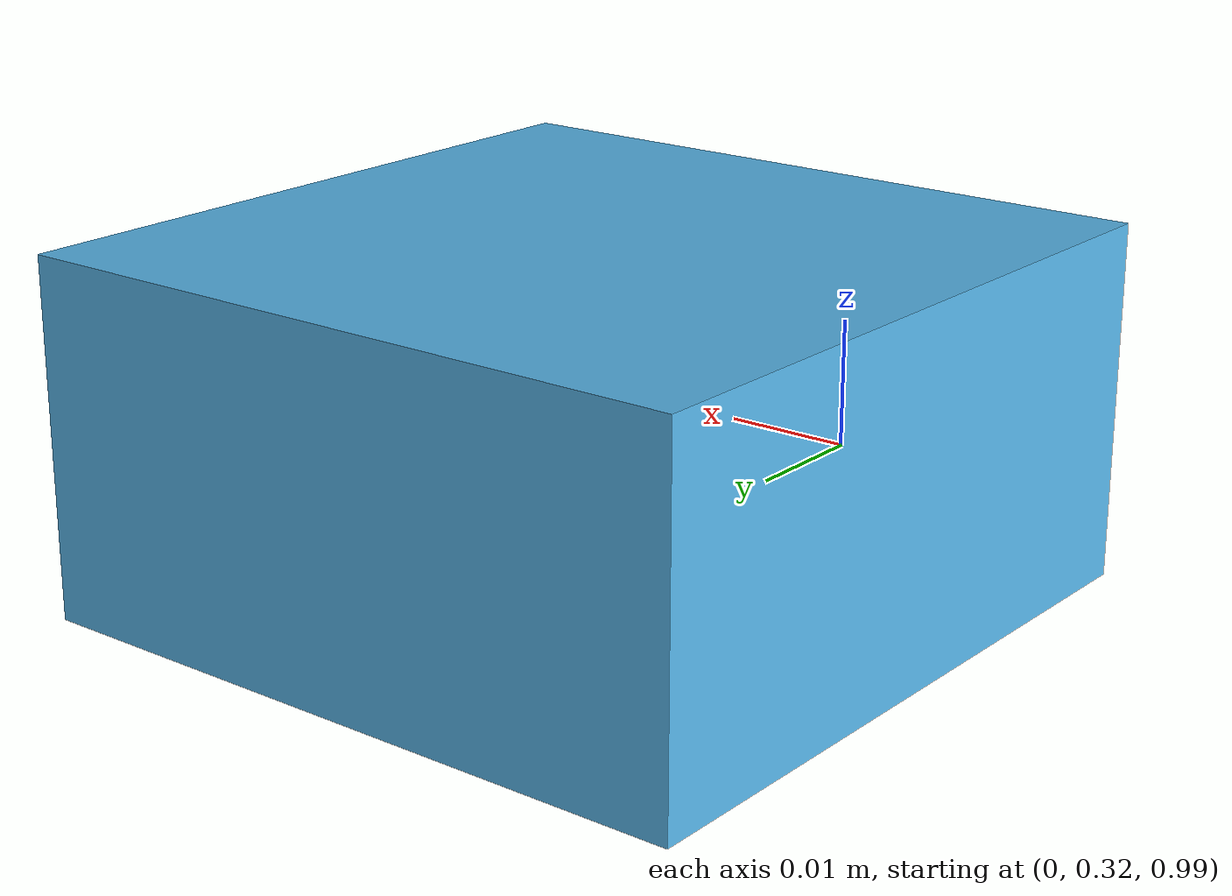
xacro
<?xml version="1.0"?>

<robot name="external_camera" xmlns:xacro="http://ros.org/wiki/xacro">

    <gazebo>
        <static>true</static>
    </gazebo>

    <!-- Base link to the world and creating a box model for the camera-->

    <link name="world" />
    <joint name="ec_world_to_root" type="fixed">
        <child link="ec_base_link" />
        <parent link="world" />
        <origin xyz="0 0.35 1" rpy="0 0 0" />
    </joint>

    <link name="ec_base_link">
        <visual>
            <origin xyz="0 0 0" rpy="0 0 0"/>
            <geometry>
                <box size="0.05 0.05 0.025" />
            </geometry>
        </visual>
        <collision>
            <origin xyz="0 0 0" rpy="0 0 0"/>
            <geometry>
                <box size="0.05 0.05 0.025" />
            </geometry>
        </collision>
        <inertial>
            <origin xyz="0 0 0" rpy="0 0 0"/>
            <mass value="1" />
            <inertia ixx="2.26" ixy="0.0" ixz="0.0" iyy="6.26" iyz="0.0" izz="8.5" />
        </inertial>
    </link>

    <!-- Creating the camera link needed and the frames where the depth and color sensor will sit-->

    <joint name="ec_camera_module" type="fixed">
        <origin xyz="0 0 -0.0125" rpy="0 ${pi/2} 0" />
        <parent link="ec_base_link" />
        <child  link="ec_camera_link" />
    </joint>

    <link name="ec_camera_link"/>

    <joint name="ec_color_module" type="fixed">
        <origin xyz="0 0 0" rpy="${-pi/2} 0 ${-pi/2}" />
        <parent link="ec_camera_link" />
        <child  link="ec_color_frame" />
    </joint>
    <link name="ec_color_frame" />

    <joint name="ec_depth_module" type="fixed">
        <origin xyz="0 0.0125 0" rpy="${-pi/2} 0 ${-pi/2}" />
        <parent link="ec_camera_link" />
        <child  link="ec_depth_frame" />
    </joint>
    <link name="ec_depth_frame"/>

    <!-- Cameras-->

    <xacro:property name="deg_to_rad" value="0.01745329251994329577" />

    <!-- RGB Camera-->

    <gazebo reference="ec_camera_link">
      <material>Gazebo/Red</material>
      <sensor name="ec_rgbCamera" type="camera">
        <pose> 0 0 0 0 0 0 </pose>
        <visualize>false</visualize>
        <update_rate>30</update_rate>
        <always_on>1</always_on>
        <camera>
          <horizontal_fov>${69.4*deg_to_rad}</horizontal_fov>
          <image>
            <width>1920</width>
            <height>1080</height>
            <format>RGB_INT8</format>
          </image>
          <clip>
            <near>0.1</near>
            <far>100</far>
          </clip>
          <noise>
            <type>gaussian</type>
            <mean>0.0</mean>
            <stddev>0.007</stddev>
          </noise>
        </camera>
        <plugin name="camera_controller" filename="libgazebo_ros_camera.so">
          <frameName>ec_color_frame</frameName>
          <cameraName>ec_color</cameraName>
          <cameraInfoTopicName>camera_info</cameraInfoTopicName>
        </plugin>
      </sensor>
    </gazebo>

    <!-- Depth Camera-->

    <gazebo reference="ec_camera_link">
      <material>Gazebo/Red</material>
      <sensor name="ec_depthCamera" type="depth">
        <pose> 0 0 0 0 0 0 </pose>
        <visualize>false</visualize>
        <update_rate>90</update_rate>
        <camera>
          <horizontal_fov>${85.2*deg_to_rad}</horizontal_fov>
          <image>
            <width>1280</width>
            <height>720</height>
            <format>R8G8B8</format>
          </image>
          <clip>
            <near>0.1</near>
            <far>100</far>
          </clip>
          <noise>
            <type>gaussian</type>
            <mean>0.0</mean>
            <stddev>0.100</stddev>
          </noise>
        </camera>
        <plugin name="camera_controller" filename="libgazebo_ros_openni_kinect.so">
          <frameName>ec_depth_frame</frameName>
          <imageTopicName>image_raw</imageTopicName>
          <cameraInfoTopicName>camera_info</cameraInfoTopicName>
          <cameraName>ec_depth</cameraName>
        </plugin>
      </sensor>
    </gazebo>

</robot>
